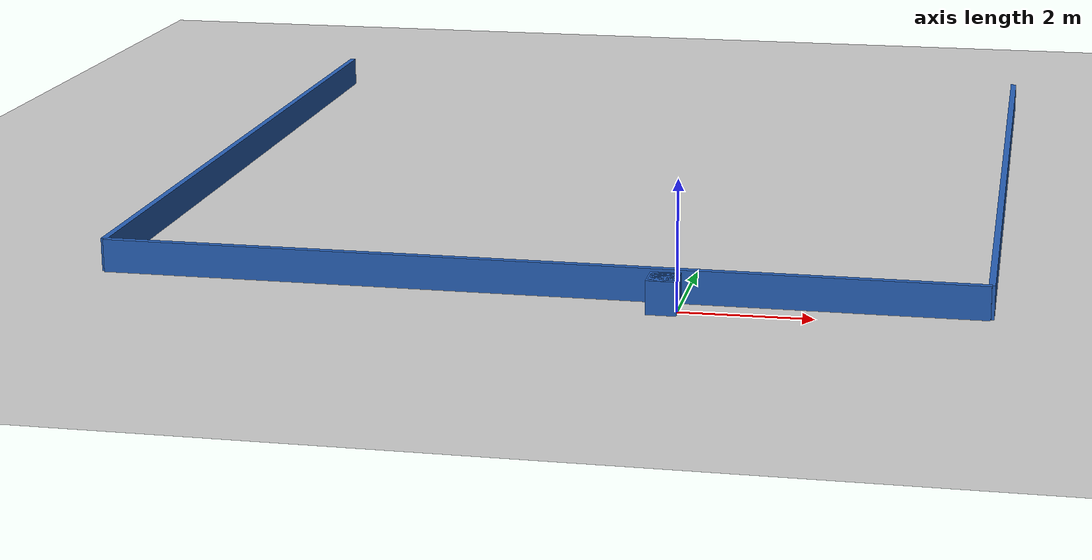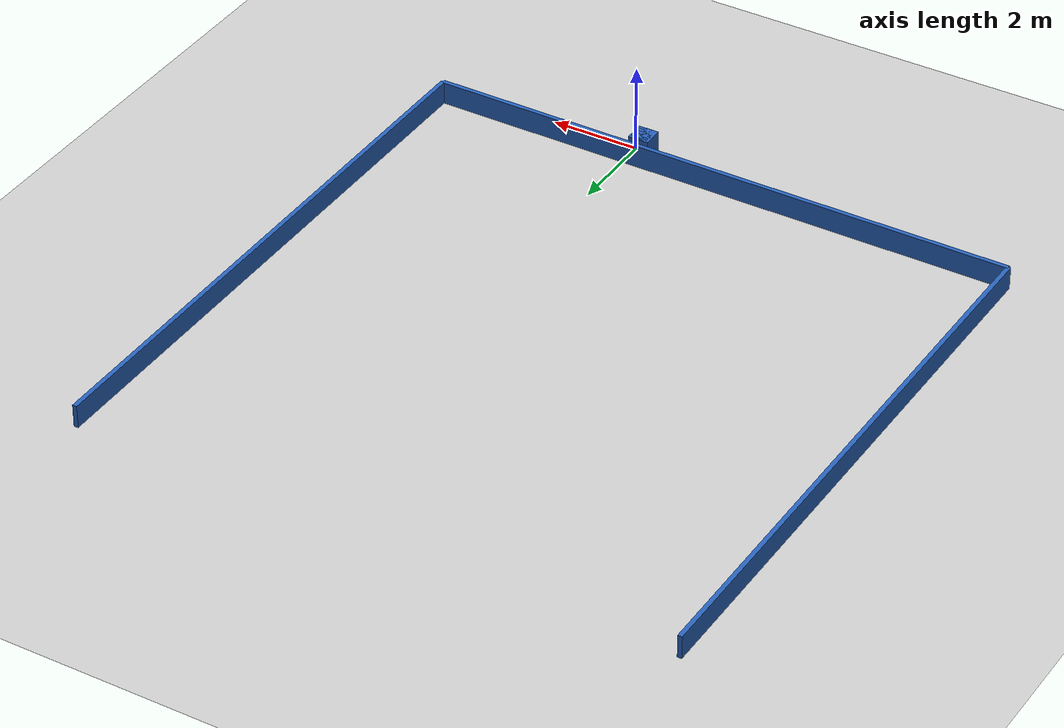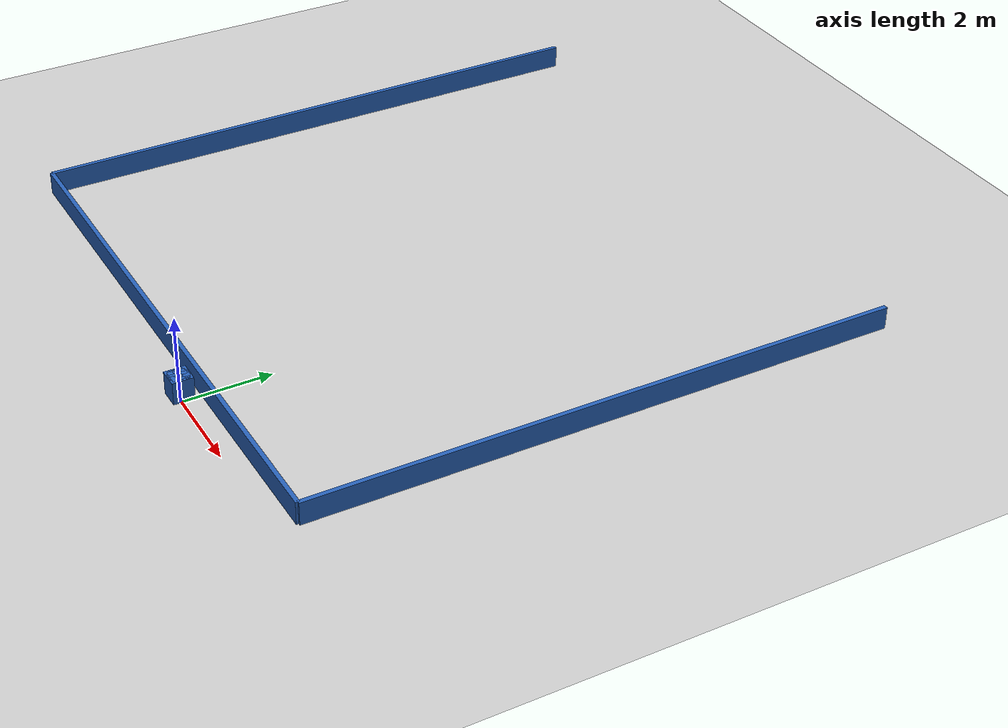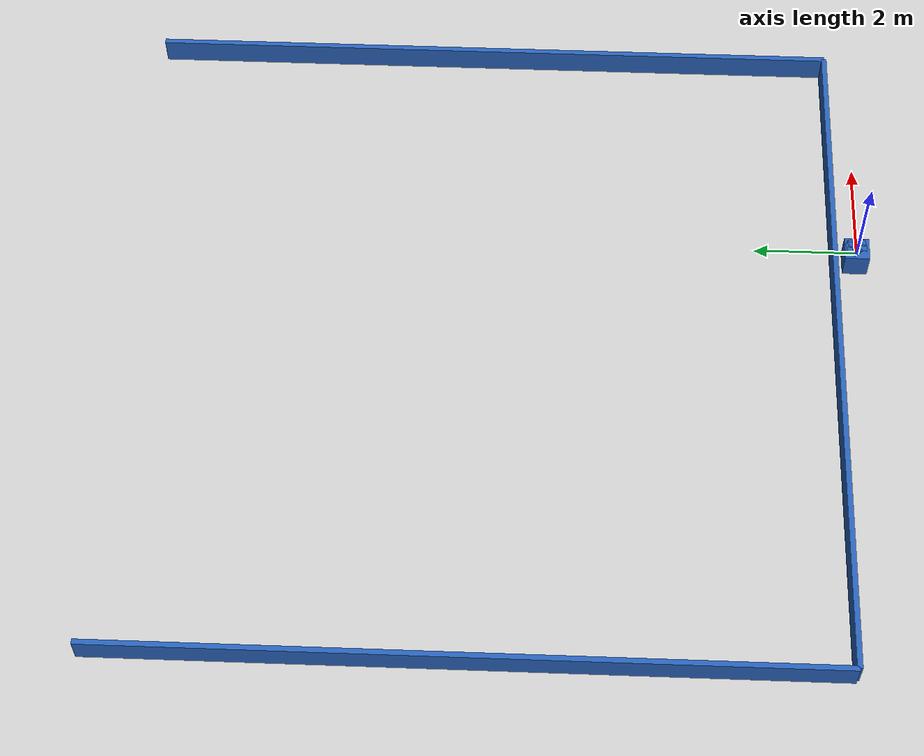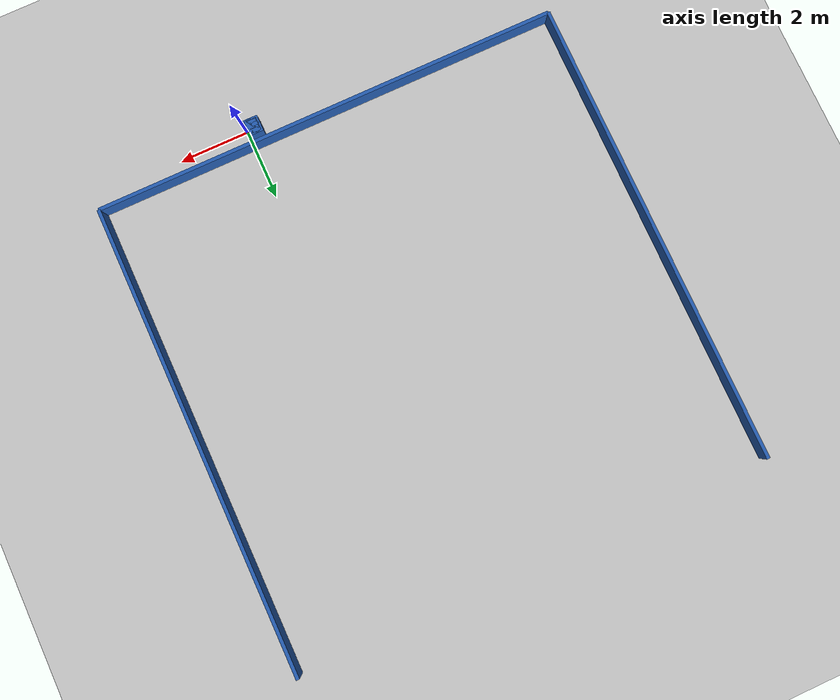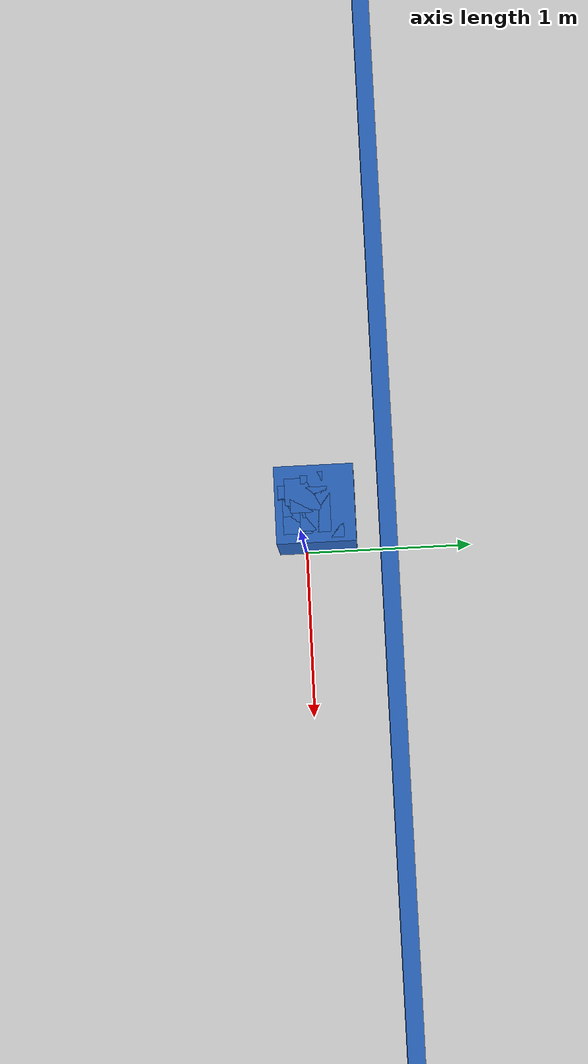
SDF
<?xml version="1.0" ?>
    <sdf version="1.5">
      <world name="default">
        <!-- A global light source -->
        <include>
          <uri>model://sun</uri>
        </include>
        <!-- A ground plane -->
        <include>
          <uri>model://ground_plane</uri>
        </include>

    <model name='libopen_space_final_T2B_90_76'>
      <static>1</static>
      <pose frame=''>-0.225000 0.075000 0.000000 0.000000 0.000000 0.000000</pose>
      <link name='link'>
        <inertial>
          <mass>1</mass>
          <inertia>
            <ixx>0.145833</ixx>
            <ixy>0</ixy>
            <ixz>0</ixz>
            <iyy>0.145833</iyy>
            <iyz>0</iyz>
            <izz>0.125</izz>
          </inertia>
        </inertial>
        <collision name='collision'>
          <geometry>
            <box>
              <size>0.34 0.16 1</size>
            </box>
          </geometry>
          <max_contacts>10</max_contacts>
          <surface>
            <contact>
              <ode/>
            </contact>
            <bounce/>
            <friction>
              <torsional>
                <ode/>
              </torsional>
              <ode/>
            </friction>
          </surface>
        </collision>
        <visual name='visual'>
          <geometry>
            <box>
              <size>0.34 0.16 1</size>
            </box>
          </geometry>
	    <material>
              <ambient>0.152000 0.379000 0.720000 1</ambient>
	      <diffuse>0.152000 0.379000 0.720000 1</diffuse>
          </material>
          <material>
            <script>
              <name>Gazebo/Grey</name>
              <uri>file://media/materials/scripts/gazebo.material</uri>
            </script>
          </material>
        </visual>
        <self_collide>0</self_collide>
        <kinematic>0</kinematic>
        <gravity>1</gravity>
      </link>
      <plugin name='libopen_space_final_T2B_90_76' filename='libopen_space_final_T2B_90_76.so'/>
    </model>

    <model name='libopen_space_final_T2B_79_93'>
      <static>1</static>
      <pose frame=''>-0.225000 0.075000 0.000000 0.000000 0.000000 0.000000</pose>
      <link name='link'>
        <inertial>
          <mass>1</mass>
          <inertia>
            <ixx>0.145833</ixx>
            <ixy>0</ixy>
            <ixz>0</ixz>
            <iyy>0.145833</iyy>
            <iyz>0</iyz>
            <izz>0.125</izz>
          </inertia>
        </inertial>
        <collision name='collision'>
          <geometry>
            <box>
              <size>0.41 0.33 1</size>
            </box>
          </geometry>
          <max_contacts>10</max_contacts>
          <surface>
            <contact>
              <ode/>
            </contact>
            <bounce/>
            <friction>
              <torsional>
                <ode/>
              </torsional>
              <ode/>
            </friction>
          </surface>
        </collision>
        <visual name='visual'>
          <geometry>
            <box>
              <size>0.41 0.33 1</size>
            </box>
          </geometry>
	    <material>
              <ambient>0.152000 0.379000 0.720000 1</ambient>
	      <diffuse>0.152000 0.379000 0.720000 1</diffuse>
          </material>
          <material>
            <script>
              <name>Gazebo/Grey</name>
              <uri>file://media/materials/scripts/gazebo.material</uri>
            </script>
          </material>
        </visual>
        <self_collide>0</self_collide>
        <kinematic>0</kinematic>
        <gravity>1</gravity>
      </link>
      <plugin name='libopen_space_final_T2B_79_93' filename='libopen_space_final_T2B_79_93.so'/>
    </model>

    <model name='libopen_space_final_T2B_56_75'>
      <static>1</static>
      <pose frame=''>-0.225000 0.075000 0.000000 0.000000 0.000000 0.000000</pose>
      <link name='link'>
        <inertial>
          <mass>1</mass>
          <inertia>
            <ixx>0.145833</ixx>
            <ixy>0</ixy>
            <ixz>0</ixz>
            <iyy>0.145833</iyy>
            <iyz>0</iyz>
            <izz>0.125</izz>
          </inertia>
        </inertial>
        <collision name='collision'>
          <geometry>
            <box>
              <size>0.10 0.29 1</size>
            </box>
          </geometry>
          <max_contacts>10</max_contacts>
          <surface>
            <contact>
              <ode/>
            </contact>
            <bounce/>
            <friction>
              <torsional>
                <ode/>
              </torsional>
              <ode/>
            </friction>
          </surface>
        </collision>
        <visual name='visual'>
          <geometry>
            <box>
              <size>0.10 0.29 1</size>
            </box>
          </geometry>
	    <material>
              <ambient>0.152000 0.379000 0.720000 1</ambient>
	      <diffuse>0.152000 0.379000 0.720000 1</diffuse>
          </material>
          <material>
            <script>
              <name>Gazebo/Grey</name>
              <uri>file://media/materials/scripts/gazebo.material</uri>
            </script>
          </material>
        </visual>
        <self_collide>0</self_collide>
        <kinematic>0</kinematic>
        <gravity>1</gravity>
      </link>
      <plugin name='libopen_space_final_T2B_56_75' filename='libopen_space_final_T2B_56_75.so'/>
    </model>

    <model name='libopen_space_final_T2B_61_88'>
      <static>1</static>
      <pose frame=''>-0.225000 0.075000 0.000000 0.000000 0.000000 0.000000</pose>
      <link name='link'>
        <inertial>
          <mass>1</mass>
          <inertia>
            <ixx>0.145833</ixx>
            <ixy>0</ixy>
            <ixz>0</ixz>
            <iyy>0.145833</iyy>
            <iyz>0</iyz>
            <izz>0.125</izz>
          </inertia>
        </inertial>
        <collision name='collision'>
          <geometry>
            <box>
              <size>0.14 0.38 1</size>
            </box>
          </geometry>
          <max_contacts>10</max_contacts>
          <surface>
            <contact>
              <ode/>
            </contact>
            <bounce/>
            <friction>
              <torsional>
                <ode/>
              </torsional>
              <ode/>
            </friction>
          </surface>
        </collision>
        <visual name='visual'>
          <geometry>
            <box>
              <size>0.14 0.38 1</size>
            </box>
          </geometry>
	    <material>
              <ambient>0.152000 0.379000 0.720000 1</ambient>
	      <diffuse>0.152000 0.379000 0.720000 1</diffuse>
          </material>
          <material>
            <script>
              <name>Gazebo/Grey</name>
              <uri>file://media/materials/scripts/gazebo.material</uri>
            </script>
          </material>
        </visual>
        <self_collide>0</self_collide>
        <kinematic>0</kinematic>
        <gravity>1</gravity>
      </link>
      <plugin name='libopen_space_final_T2B_61_88' filename='libopen_space_final_T2B_61_88.so'/>
    </model>

    <model name='libopen_space_final_T2B_61_96'>
      <static>1</static>
      <pose frame=''>-0.225000 0.075000 0.000000 0.000000 0.000000 0.000000</pose>
      <link name='link'>
        <inertial>
          <mass>1</mass>
          <inertia>
            <ixx>0.145833</ixx>
            <ixy>0</ixy>
            <ixz>0</ixz>
            <iyy>0.145833</iyy>
            <iyz>0</iyz>
            <izz>0.125</izz>
          </inertia>
        </inertial>
        <collision name='collision'>
          <geometry>
            <box>
              <size>0.46 0.47 1</size>
            </box>
          </geometry>
          <max_contacts>10</max_contacts>
          <surface>
            <contact>
              <ode/>
            </contact>
            <bounce/>
            <friction>
              <torsional>
                <ode/>
              </torsional>
              <ode/>
            </friction>
          </surface>
        </collision>
        <visual name='visual'>
          <geometry>
            <box>
              <size>0.46 0.47 1</size>
            </box>
          </geometry>
	    <material>
              <ambient>0.152000 0.379000 0.720000 1</ambient>
	      <diffuse>0.152000 0.379000 0.720000 1</diffuse>
          </material>
          <material>
            <script>
              <name>Gazebo/Grey</name>
              <uri>file://media/materials/scripts/gazebo.material</uri>
            </script>
          </material>
        </visual>
        <self_collide>0</self_collide>
        <kinematic>0</kinematic>
        <gravity>1</gravity>
      </link>
      <plugin name='libopen_space_final_T2B_61_96' filename='libopen_space_final_T2B_61_96.so'/>
    </model>

    <model name='libopen_space_final_T2B_71_69'>
      <static>1</static>
      <pose frame=''>-0.225000 0.075000 0.000000 0.000000 0.000000 0.000000</pose>
      <link name='link'>
        <inertial>
          <mass>1</mass>
          <inertia>
            <ixx>0.145833</ixx>
            <ixy>0</ixy>
            <ixz>0</ixz>
            <iyy>0.145833</iyy>
            <iyz>0</iyz>
            <izz>0.125</izz>
          </inertia>
        </inertial>
        <collision name='collision'>
          <geometry>
            <box>
              <size>0.33 0.15 1</size>
            </box>
          </geometry>
          <max_contacts>10</max_contacts>
          <surface>
            <contact>
              <ode/>
            </contact>
            <bounce/>
            <friction>
              <torsional>
                <ode/>
              </torsional>
              <ode/>
            </friction>
          </surface>
        </collision>
        <visual name='visual'>
          <geometry>
            <box>
              <size>0.33 0.15 1</size>
            </box>
          </geometry>
	    <material>
              <ambient>0.152000 0.379000 0.720000 1</ambient>
	      <diffuse>0.152000 0.379000 0.720000 1</diffuse>
          </material>
          <material>
            <script>
              <name>Gazebo/Grey</name>
              <uri>file://media/materials/scripts/gazebo.material</uri>
            </script>
          </material>
        </visual>
        <self_collide>0</self_collide>
        <kinematic>0</kinematic>
        <gravity>1</gravity>
      </link>
      <plugin name='libopen_space_final_T2B_71_69' filename='libopen_space_final_T2B_71_69.so'/>
    </model>

    <model name='libopen_space_final_T2B_77_65'>
      <static>1</static>
      <pose frame=''>-0.225000 0.075000 0.000000 0.000000 0.000000 0.000000</pose>
      <link name='link'>
        <inertial>
          <mass>1</mass>
          <inertia>
            <ixx>0.145833</ixx>
            <ixy>0</ixy>
            <ixz>0</ixz>
            <iyy>0.145833</iyy>
            <iyz>0</iyz>
            <izz>0.125</izz>
          </inertia>
        </inertial>
        <collision name='collision'>
          <geometry>
            <box>
              <size>0.34 0.18 1</size>
            </box>
          </geometry>
          <max_contacts>10</max_contacts>
          <surface>
            <contact>
              <ode/>
            </contact>
            <bounce/>
            <friction>
              <torsional>
                <ode/>
              </torsional>
              <ode/>
            </friction>
          </surface>
        </collision>
        <visual name='visual'>
          <geometry>
            <box>
              <size>0.34 0.18 1</size>
            </box>
          </geometry>
	    <material>
              <ambient>0.152000 0.379000 0.720000 1</ambient>
	      <diffuse>0.152000 0.379000 0.720000 1</diffuse>
          </material>
          <material>
            <script>
              <name>Gazebo/Grey</name>
              <uri>file://media/materials/scripts/gazebo.material</uri>
            </script>
          </material>
        </visual>
        <self_collide>0</self_collide>
        <kinematic>0</kinematic>
        <gravity>1</gravity>
      </link>
      <plugin name='libopen_space_final_T2B_77_65' filename='libopen_space_final_T2B_77_65.so'/>
    </model>

    <model name='libopen_space_final_T2B_94_79'>
      <static>1</static>
      <pose frame=''>-0.225000 0.075000 0.000000 0.000000 0.000000 0.000000</pose>
      <link name='link'>
        <inertial>
          <mass>1</mass>
          <inertia>
            <ixx>0.145833</ixx>
            <ixy>0</ixy>
            <ixz>0</ixz>
            <iyy>0.145833</iyy>
            <iyz>0</iyz>
            <izz>0.125</izz>
          </inertia>
        </inertial>
        <collision name='collision'>
          <geometry>
            <box>
              <size>0.38 0.10 1</size>
            </box>
          </geometry>
          <max_contacts>10</max_contacts>
          <surface>
            <contact>
              <ode/>
            </contact>
            <bounce/>
            <friction>
              <torsional>
                <ode/>
              </torsional>
              <ode/>
            </friction>
          </surface>
        </collision>
        <visual name='visual'>
          <geometry>
            <box>
              <size>0.38 0.10 1</size>
            </box>
          </geometry>
	    <material>
              <ambient>0.152000 0.379000 0.720000 1</ambient>
	      <diffuse>0.152000 0.379000 0.720000 1</diffuse>
          </material>
          <material>
            <script>
              <name>Gazebo/Grey</name>
              <uri>file://media/materials/scripts/gazebo.material</uri>
            </script>
          </material>
        </visual>
        <self_collide>0</self_collide>
        <kinematic>0</kinematic>
        <gravity>1</gravity>
      </link>
      <plugin name='libopen_space_final_T2B_94_79' filename='libopen_space_final_T2B_94_79.so'/>
    </model>

    <model name='libopen_space_final_T2B_79_14'>
      <static>1</static>
      <pose frame=''>-0.225000 0.075000 0.000000 0.000000 0.000000 0.000000</pose>
      <link name='link'>
        <inertial>
          <mass>1</mass>
          <inertia>
            <ixx>0.145833</ixx>
            <ixy>0</ixy>
            <ixz>0</ixz>
            <iyy>0.145833</iyy>
            <iyz>0</iyz>
            <izz>0.125</izz>
          </inertia>
        </inertial>
        <collision name='collision'>
          <geometry>
            <box>
              <size>0.35 0.38 1</size>
            </box>
          </geometry>
          <max_contacts>10</max_contacts>
          <surface>
            <contact>
              <ode/>
            </contact>
            <bounce/>
            <friction>
              <torsional>
                <ode/>
              </torsional>
              <ode/>
            </friction>
          </surface>
        </collision>
        <visual name='visual'>
          <geometry>
            <box>
              <size>0.35 0.38 1</size>
            </box>
          </geometry>
	    <material>
              <ambient>0.152000 0.379000 0.720000 1</ambient>
	      <diffuse>0.152000 0.379000 0.720000 1</diffuse>
          </material>
          <material>
            <script>
              <name>Gazebo/Grey</name>
              <uri>file://media/materials/scripts/gazebo.material</uri>
            </script>
          </material>
        </visual>
        <self_collide>0</self_collide>
        <kinematic>0</kinematic>
        <gravity>1</gravity>
      </link>
      <plugin name='libopen_space_final_T2B_79_14' filename='libopen_space_final_T2B_79_14.so'/>
    </model>

    <model name='libopen_space_final_T2B_129_21'>
      <static>1</static>
      <pose frame=''>-0.225000 0.075000 0.000000 0.000000 0.000000 0.000000</pose>
      <link name='link'>
        <inertial>
          <mass>1</mass>
          <inertia>
            <ixx>0.145833</ixx>
            <ixy>0</ixy>
            <ixz>0</ixz>
            <iyy>0.145833</iyy>
            <iyz>0</iyz>
            <izz>0.125</izz>
          </inertia>
        </inertial>
        <collision name='collision'>
          <geometry>
            <box>
              <size>0.20 0.15 1</size>
            </box>
          </geometry>
          <max_contacts>10</max_contacts>
          <surface>
            <contact>
              <ode/>
            </contact>
            <bounce/>
            <friction>
              <torsional>
                <ode/>
              </torsional>
              <ode/>
            </friction>
          </surface>
        </collision>
        <visual name='visual'>
          <geometry>
            <box>
              <size>0.20 0.15 1</size>
            </box>
          </geometry>
	    <material>
              <ambient>0.152000 0.379000 0.720000 1</ambient>
	      <diffuse>0.152000 0.379000 0.720000 1</diffuse>
          </material>
          <material>
            <script>
              <name>Gazebo/Grey</name>
              <uri>file://media/materials/scripts/gazebo.material</uri>
            </script>
          </material>
        </visual>
        <self_collide>0</self_collide>
        <kinematic>0</kinematic>
        <gravity>1</gravity>
      </link>
      <plugin name='libopen_space_final_T2B_129_21' filename='libopen_space_final_T2B_129_21.so'/>
    </model>

    <model name='libopen_space_final_T2B_116_74'>
      <static>1</static>
      <pose frame=''>-0.225000 0.075000 0.000000 0.000000 0.000000 0.000000</pose>
      <link name='link'>
        <inertial>
          <mass>1</mass>
          <inertia>
            <ixx>0.145833</ixx>
            <ixy>0</ixy>
            <ixz>0</ixz>
            <iyy>0.145833</iyy>
            <iyz>0</iyz>
            <izz>0.125</izz>
          </inertia>
        </inertial>
        <collision name='collision'>
          <geometry>
            <box>
              <size>0.23 0.43 1</size>
            </box>
          </geometry>
          <max_contacts>10</max_contacts>
          <surface>
            <contact>
              <ode/>
            </contact>
            <bounce/>
            <friction>
              <torsional>
                <ode/>
              </torsional>
              <ode/>
            </friction>
          </surface>
        </collision>
        <visual name='visual'>
          <geometry>
            <box>
              <size>0.23 0.43 1</size>
            </box>
          </geometry>
	    <material>
              <ambient>0.152000 0.379000 0.720000 1</ambient>
	      <diffuse>0.152000 0.379000 0.720000 1</diffuse>
          </material>
          <material>
            <script>
              <name>Gazebo/Grey</name>
              <uri>file://media/materials/scripts/gazebo.material</uri>
            </script>
          </material>
        </visual>
        <self_collide>0</self_collide>
        <kinematic>0</kinematic>
        <gravity>1</gravity>
      </link>
      <plugin name='libopen_space_final_T2B_116_74' filename='libopen_space_final_T2B_116_74.so'/>
    </model>

    <model name='libopen_space_final_T2B_83_17'>
      <static>1</static>
      <pose frame=''>-0.225000 0.075000 0.000000 0.000000 0.000000 0.000000</pose>
      <link name='link'>
        <inertial>
          <mass>1</mass>
          <inertia>
            <ixx>0.145833</ixx>
            <ixy>0</ixy>
            <ixz>0</ixz>
            <iyy>0.145833</iyy>
            <iyz>0</iyz>
            <izz>0.125</izz>
          </inertia>
        </inertial>
        <collision name='collision'>
          <geometry>
            <box>
              <size>0.32 0.18 1</size>
            </box>
          </geometry>
          <max_contacts>10</max_contacts>
          <surface>
            <contact>
              <ode/>
            </contact>
            <bounce/>
            <friction>
              <torsional>
                <ode/>
              </torsional>
              <ode/>
            </friction>
          </surface>
        </collision>
        <visual name='visual'>
          <geometry>
            <box>
              <size>0.32 0.18 1</size>
            </box>
          </geometry>
	    <material>
              <ambient>0.152000 0.379000 0.720000 1</ambient>
	      <diffuse>0.152000 0.379000 0.720000 1</diffuse>
          </material>
          <material>
            <script>
              <name>Gazebo/Grey</name>
              <uri>file://media/materials/scripts/gazebo.material</uri>
            </script>
          </material>
        </visual>
        <self_collide>0</self_collide>
        <kinematic>0</kinematic>
        <gravity>1</gravity>
      </link>
      <plugin name='libopen_space_final_T2B_83_17' filename='libopen_space_final_T2B_83_17.so'/>
    </model>

    <model name='libopen_space_final_T2B_115_16'>
      <static>1</static>
      <pose frame=''>-0.225000 0.075000 0.000000 0.000000 0.000000 0.000000</pose>
      <link name='link'>
        <inertial>
          <mass>1</mass>
          <inertia>
            <ixx>0.145833</ixx>
            <ixy>0</ixy>
            <ixz>0</ixz>
            <iyy>0.145833</iyy>
            <iyz>0</iyz>
            <izz>0.125</izz>
          </inertia>
        </inertial>
        <collision name='collision'>
          <geometry>
            <box>
              <size>0.31 0.35 1</size>
            </box>
          </geometry>
          <max_contacts>10</max_contacts>
          <surface>
            <contact>
              <ode/>
            </contact>
            <bounce/>
            <friction>
              <torsional>
                <ode/>
              </torsional>
              <ode/>
            </friction>
          </surface>
        </collision>
        <visual name='visual'>
          <geometry>
            <box>
              <size>0.31 0.35 1</size>
            </box>
          </geometry>
	    <material>
              <ambient>0.152000 0.379000 0.720000 1</ambient>
	      <diffuse>0.152000 0.379000 0.720000 1</diffuse>
          </material>
          <material>
            <script>
              <name>Gazebo/Grey</name>
              <uri>file://media/materials/scripts/gazebo.material</uri>
            </script>
          </material>
        </visual>
        <self_collide>0</self_collide>
        <kinematic>0</kinematic>
        <gravity>1</gravity>
      </link>
      <plugin name='libopen_space_final_T2B_115_16' filename='libopen_space_final_T2B_115_16.so'/>
    </model>

        <model name='bottom_wall'>
          <static>1</static>
          <pose frame=''>-2.25 0.5 0.000000 0.000000 0.000000 1.57079632</pose>
          <link name='link'>
            <inertial>
            <mass>1</mass>
            <inertia>
              <ixx>0.145833</ixx>
              <ixy>0</ixy>
              <ixz>0</ixz>
              <iyy>0.145833</iyy>
              <iyz>0</iyz>
              <izz>0.125</izz>
            </inertia>
            </inertial>
            <collision name='collision'>
            <geometry>
              <box>
              <size>0.1 13.5 1</size>
              </box>
            </geometry>
            <max_contacts>10</max_contacts>
            <surface>
              <contact>
              <ode/>
              </contact>
              <bounce/>
              <friction>
              <torsional>
                <ode/>
              </torsional>
              <ode/>
              </friction>
            </surface>
            </collision>
            <visual name='visual'>
            <geometry>
              <box>
              <size>0.1 13.5 1</size>
              </box>
            </geometry>
            <material>
              <ambient>0.152000 0.379000 0.720000 1</ambient>
            <diffuse>0.152000 0.379000 0.720000 1</diffuse>
            </material>
            <material>
              <script>
              <name>Gazebo/Grey</name>
              <uri>file://media/materials/scripts/gazebo.material</uri>
              </script>
            </material>
            </visual>
            <self_collide>0</self_collide>
            <kinematic>0</kinematic>
            <gravity>1</gravity>
          </link>
        </model>

        <model name='left_wall'>
          <static>1</static>
          <pose frame=''>-9 7.25 0.000000 0.000000 0.000000 0.000000</pose>
          <link name='link'>
            <inertial>
            <mass>1</mass>
            <inertia>
              <ixx>0.145833</ixx>
              <ixy>0</ixy>
              <ixz>0</ixz>
              <iyy>0.145833</iyy>
              <iyz>0</iyz>
              <izz>0.125</izz>
            </inertia>
            </inertial>
            <collision name='collision'>
            <geometry>
              <box>
              <size>0.1 13.5 1</size>
              </box>
            </geometry>
            <max_contacts>10</max_contacts>
            <surface>
              <contact>
              <ode/>
              </contact>
              <bounce/>
              <friction>
              <torsional>
                <ode/>
              </torsional>
              <ode/>
              </friction>
            </surface>
            </collision>
            <visual name='visual'>
            <geometry>
              <box>
              <size>0.1 13.5 1</size>
              </box>
            </geometry>
            <material>
              <ambient>0.152000 0.379000 0.720000 1</ambient>
            <diffuse>0.152000 0.379000 0.720000 1</diffuse>
            </material>
            <material>
              <script>
              <name>Gazebo/Grey</name>
              <uri>file://media/materials/scripts/gazebo.material</uri>
              </script>
            </material>
            </visual>
            <self_collide>0</self_collide>
            <kinematic>0</kinematic>
            <gravity>1</gravity>
          </link>
        </model>

        <model name='right_wall'>
          <static>1</static>
          <pose frame=''>4.5 7.25 0.000000 0.000000 0.000000 0.000000</pose>
          <link name='link'>
            <inertial>
            <mass>1</mass>
            <inertia>
              <ixx>0.145833</ixx>
              <ixy>0</ixy>
              <ixz>0</ixz>
              <iyy>0.145833</iyy>
              <iyz>0</iyz>
              <izz>0.125</izz>
            </inertia>
            </inertial>
            <collision name='collision'>
            <geometry>
              <box>
              <size>0.1 13.5 1</size>
              </box>
            </geometry>
            <max_contacts>10</max_contacts>
            <surface>
              <contact>
              <ode/>
              </contact>
              <bounce/>
              <friction>
              <torsional>
                <ode/>
              </torsional>
              <ode/>
              </friction>
            </surface>
            </collision>
            <visual name='visual'>
            <geometry>
              <box>
              <size>0.1 13.5 1</size>
              </box>
            </geometry>
            <material>
              <ambient>0.152000 0.379000 0.720000 1</ambient>
            <diffuse>0.152000 0.379000 0.720000 1</diffuse>
            </material>
            <material>
              <script>
              <name>Gazebo/Grey</name>
              <uri>file://media/materials/scripts/gazebo.material</uri>
              </script>
            </material>
            </visual>
            <self_collide>0</self_collide>
            <kinematic>0</kinematic>
            <gravity>1</gravity>
          </link>
        </model>

      </world>
    </sdf>"
